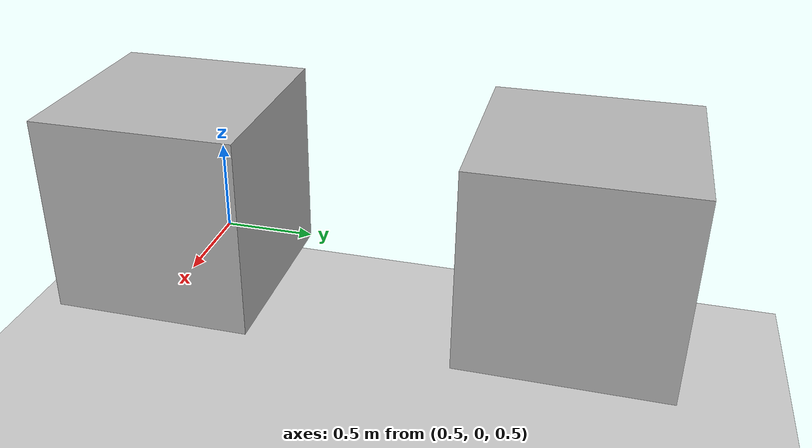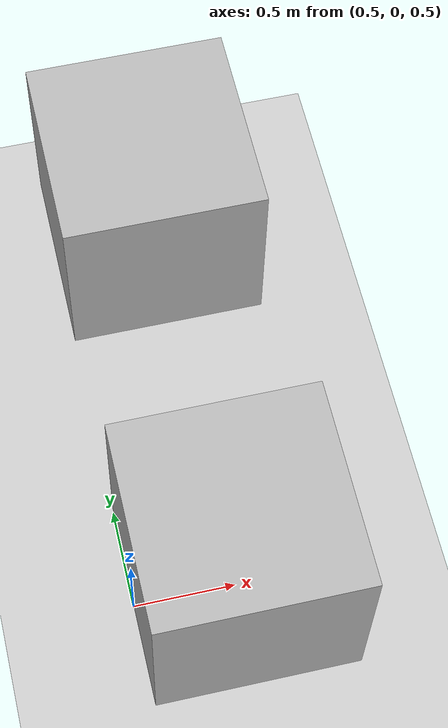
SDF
<?xml version="1.0" ?>
<sdf version="1.4">
  <world name="default">
    <include>
      <uri>model://mygroundplane</uri>
    </include>
    <include>
      <uri>model://sun</uri>
      <pose>-5 0 5 0 -1.04 0 </pose>
    </include>
    <include>
      <uri>model://aruco_box</uri>
      <pose>1 0 1 3.14159265 0 0</pose>
      <name>Box1</name>
    </include>
    <include>
      <uri>model://aruco_box_2</uri>
      <pose>1 2 1 3.14159265 0 0</pose>
      <name>Box2</name>
    </include>

    <!-- Only one ROS interface plugin is required per world, as any other plugin can connect a Gazebo
         topic to a ROS topic (or vise versa). -->
    <plugin name="ros_interface_plugin" filename="librotors_gazebo_ros_interface_plugin.so"/>

    <spherical_coordinates>
      <surface_model>EARTH_WGS84</surface_model>
      <latitude_deg>47.3667</latitude_deg>
      <longitude_deg>8.5500</longitude_deg>
      <elevation>500.0</elevation>
      <heading_deg>0</heading_deg>
    </spherical_coordinates>
    <physics type='ode'>
      <ode>
        <solver>
          <type>quick</type>
          <iters>1000</iters>
          <sor>1.3</sor>
        </solver>
        <constraints>
          <cfm>0</cfm>
          <erp>0.2</erp>
          <contact_max_correcting_vel>100</contact_max_correcting_vel>
          <contact_surface_layer>0.001</contact_surface_layer>
        </constraints>
      </ode>
      <max_step_size>0.01</max_step_size>
      <real_time_factor>1</real_time_factor>
      <real_time_update_rate>100</real_time_update_rate>
      <gravity>0 0 -9.8</gravity>
    </physics>
  </world>
</sdf>

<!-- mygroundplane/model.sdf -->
<sdf version="1.4">
  <model name="my_ground_plane">
    <static>true</static>
    <link name="link">
      <collision name="collision">
        <geometry>
          <plane>
            <normal>0 0 1</normal>
            <size>50 50</size>
          </plane>
        </geometry>
        <surface>
          <friction>
            <ode>
              <mu>100</mu>
              <mu2>50</mu2>
            </ode>
          </friction>
        </surface>
      </collision>
      <visual name="visual">
        <cast_shadows>false</cast_shadows>
        <geometry>
          <plane>
            <normal>0 0 1</normal>
            <size>50 50</size>
          </plane>
        </geometry>
        <material>
          <script>
            <uri>model://mygroundplane/materials/scripts</uri>
            <uri>model://mygroundplane/materials/textures</uri>
            <name>MyGroundPlane/Image</name>
          </script>
        </material>
      </visual>
    </link>
  </model>
</sdf>

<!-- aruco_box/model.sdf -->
<sdf version="1.5">

 <model name='aruco_box'>
      <pose>0 0 1 0 3.14159265 0</pose>
      <link name='link'>
        <inertial>
          <mass>1</mass>
          <inertia>
            <ixx>0.166667</ixx>
            <ixy>0</ixy>
            <ixz>0</ixz>
            <iyy>0.166667</iyy>
            <iyz>0</iyz>
            <izz>0.166667</izz>
          </inertia>
          <pose>0 0 0 0 -0 0</pose>
        </inertial>
        <collision name='collision'>
          <geometry>
            <box>
              <size>1 1 1</size>
            </box>
          </geometry>
          <surface>
            <contact>
              <ode/>
            </contact>
            <bounce/>
            <friction>
              <torsional>
                <ode/>
              </torsional>
              <ode/>
            </friction>
          </surface>
          <max_contacts>10</max_contacts>
        </collision>
        <visual name='aruco_box_mesh'>
          <geometry>
            <mesh>
                <uri>model://aruco_box/model.dae</uri>
                <scale>0.5 0.5 0.5</scale>
            </mesh>
          </geometry>
        </visual>
        <self_collide>0</self_collide>
        <enable_wind>0</enable_wind>
        <kinematic>0</kinematic>
        <static>1</static>
      </link>
      <static>1</static>
    </model>
    </sdf>

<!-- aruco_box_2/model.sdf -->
<sdf version="1.5">

 <model name='aruco_box_2'>
      <pose>0 0 1 0 3.14159265 0</pose>
      <link name='link'>
        <inertial>
          <mass>1</mass>
          <inertia>
            <ixx>0.166667</ixx>
            <ixy>0</ixy>
            <ixz>0</ixz>
            <iyy>0.166667</iyy>
            <iyz>0</iyz>
            <izz>0.166667</izz>
          </inertia>
          <pose>0 0 0 0 -0 0</pose>
        </inertial>
        <collision name='collision'>
          <geometry>
            <box>
              <size>1 1 1</size>
            </box>
          </geometry>
          <surface>
            <contact>
              <ode/>
            </contact>
            <bounce/>
            <friction>
              <torsional>
                <ode/>
              </torsional>
              <ode/>
            </friction>
          </surface>
          <max_contacts>10</max_contacts>
        </collision>
        <visual name='aruco_box_2_mesh'>
          <geometry>
            <mesh>
                <uri>model://aruco_box_2/model.dae</uri>
                <scale>0.5 0.5 0.5</scale>
            </mesh>
          </geometry>
        </visual>
        <self_collide>0</self_collide>
        <enable_wind>0</enable_wind>
        <kinematic>0</kinematic>
        <static>1</static>
      </link>
      <static>1</static>
    </model>
    </sdf>
